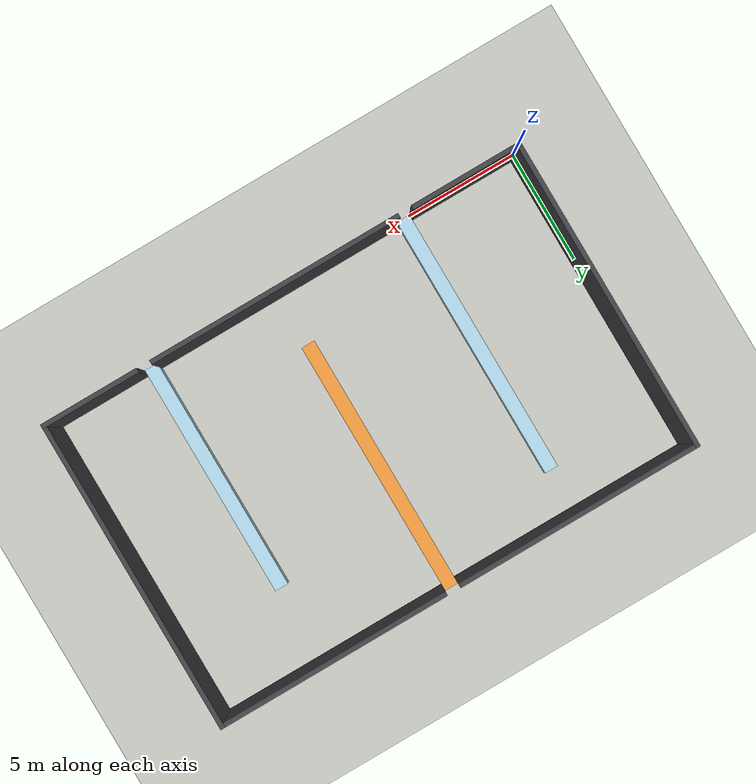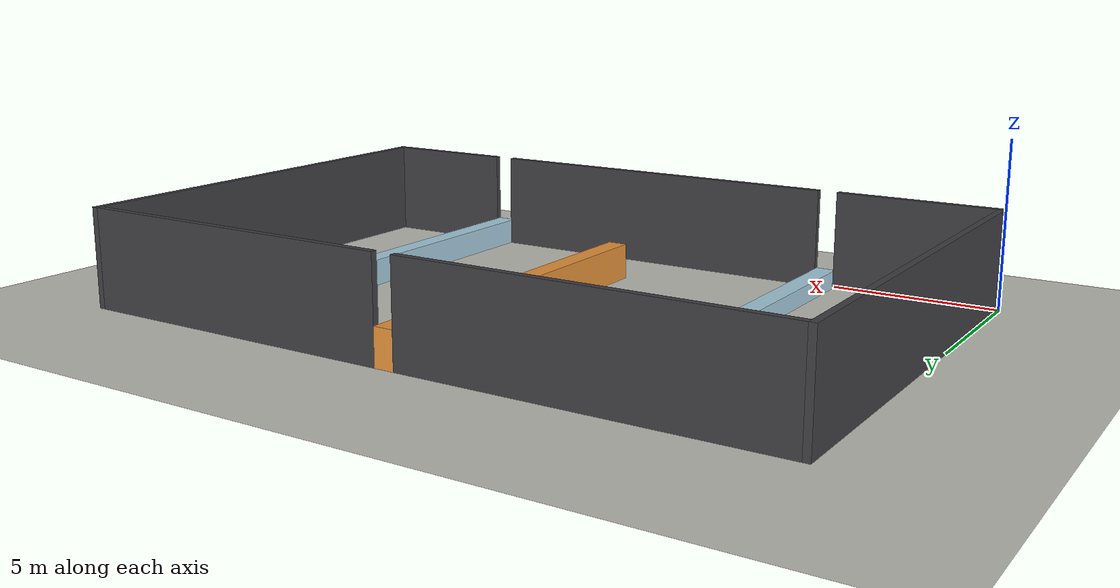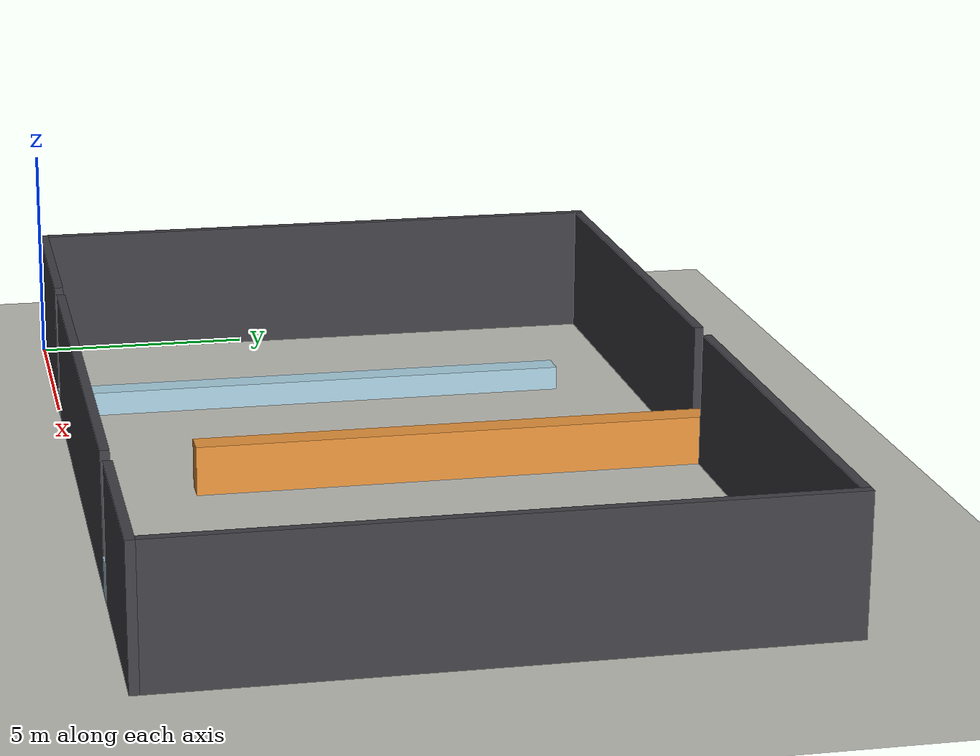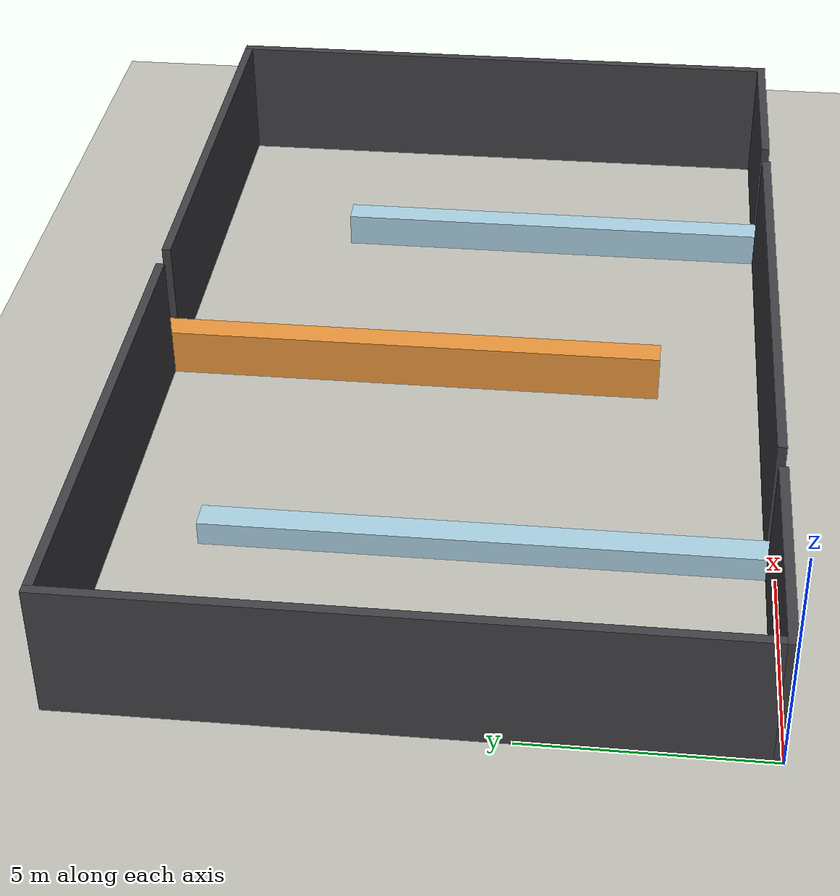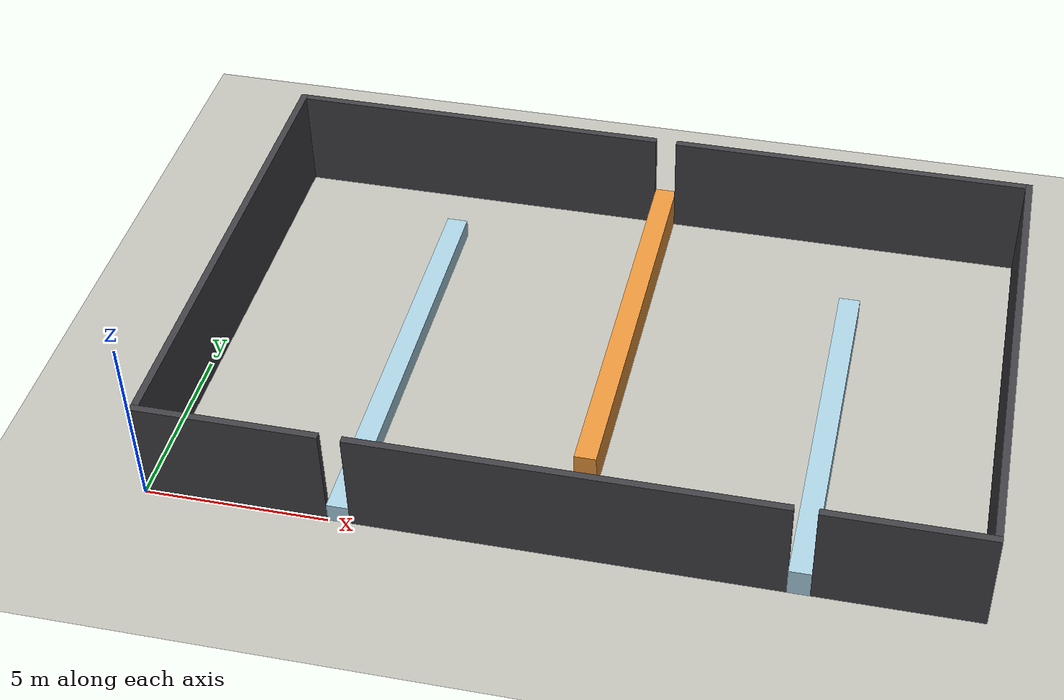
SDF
<?xml version="1.0" ?>
<!-- 자동 생성 파일 — 직접 수정하지 말 것.
     생성: python3 benchmark/export_sdf.py
     원본: benchmark/envs/heightmap.py 의 medium_open
     벽 3개(0.55/1.10/0.80), 1.10은 4D만 통과 가능 -->
<sdf version="1.9">
  <world name="medium_open">

    <physics name="1ms" type="ignored">
      <max_step_size>0.001</max_step_size>
      <real_time_factor>1.0</real_time_factor>
    </physics>

    <plugin filename="gz-sim-physics-system" name="gz::sim::systems::Physics">
    </plugin>
    <plugin filename="gz-sim-user-commands-system" name="gz::sim::systems::UserCommands">
    </plugin>
    <plugin filename="gz-sim-scene-broadcaster-system" name="gz::sim::systems::SceneBroadcaster">
    </plugin>
    <plugin filename="gz-sim-contact-system" name="gz::sim::systems::Contact">
    </plugin>
    <plugin filename="gz-sim-imu-system" name="gz::sim::systems::Imu">
    </plugin>
    <plugin filename="gz-sim-sensors-system" name="gz::sim::systems::Sensors">
      <render_engine>ogre</render_engine>
    </plugin>

    <light type="directional" name="sun">
      <cast_shadows>true</cast_shadows>
      <pose>0 0 10 0 0 0</pose>
      <diffuse>0.8 0.8 0.8 1</diffuse>
      <specular>0.2 0.2 0.2 1</specular>
      <direction>-0.5 0.1 -0.9</direction>
    </light>

    <model name="ground_plane">
      <static>true</static>
      <link name="link">
        <collision name="collision">
          <geometry><plane>
            <normal>0 0 1</normal>
            <size>32.0 24.0</size>
          </plane></geometry>
        </collision>
        <visual name="visual">
          <geometry><plane>
            <normal>0 0 1</normal>
            <size>32.0 24.0</size>
          </plane></geometry>
          <material>
            <ambient>0.75 0.75 0.72 1</ambient>
            <diffuse>0.75 0.75 0.72 1</diffuse>
          </material>
        </visual>
      </link>
    </model>

    <model name="obs_0001_h055">
      <static>true</static>
      <pose>5.300 6.000 0.275 0 0 0</pose>
      <link name="link">
        <collision name="collision">
          <geometry><box><size>0.600 12.000 0.550</size></box></geometry>
        </collision>
        <visual name="visual">
          <geometry><box><size>0.600 12.000 0.550</size></box></geometry>
          <material>
            <ambient>0.66 0.81 0.88 1</ambient>
            <diffuse>0.66 0.81 0.88 1</diffuse>
          </material>
        </visual>
      </link>
    </model>
    <model name="obs_0002_h080">
      <static>true</static>
      <pose>17.300 5.250 0.400 0 0 0</pose>
      <link name="link">
        <collision name="collision">
          <geometry><box><size>0.600 10.500 0.800</size></box></geometry>
        </collision>
        <visual name="visual">
          <geometry><box><size>0.600 10.500 0.800</size></box></geometry>
          <material>
            <ambient>0.66 0.81 0.88 1</ambient>
            <diffuse>0.66 0.81 0.88 1</diffuse>
          </material>
        </visual>
      </link>
    </model>
    <model name="obs_0003_h110">
      <static>true</static>
      <pose>11.300 8.250 0.550 0 0 0</pose>
      <link name="link">
        <collision name="collision">
          <geometry><box><size>0.600 11.500 1.100</size></box></geometry>
        </collision>
        <visual name="visual">
          <geometry><box><size>0.600 11.500 1.100</size></box></geometry>
          <material>
            <ambient>0.91 0.58 0.23 1</ambient>
            <diffuse>0.91 0.58 0.23 1</diffuse>
          </material>
        </visual>
      </link>
    </model>
    <model name="obs_0004_h300">
      <static>true</static>
      <pose>2.500 0.100 1.500 0 0 0</pose>
      <link name="link">
        <collision name="collision">
          <geometry><box><size>5.000 0.200 3.000</size></box></geometry>
        </collision>
        <visual name="visual">
          <geometry><box><size>5.000 0.200 3.000</size></box></geometry>
          <material>
            <ambient>0.25 0.25 0.27 1</ambient>
            <diffuse>0.25 0.25 0.27 1</diffuse>
          </material>
        </visual>
      </link>
    </model>
    <model name="obs_0005_h300">
      <static>true</static>
      <pose>11.300 0.100 1.500 0 0 0</pose>
      <link name="link">
        <collision name="collision">
          <geometry><box><size>11.400 0.200 3.000</size></box></geometry>
        </collision>
        <visual name="visual">
          <geometry><box><size>11.400 0.200 3.000</size></box></geometry>
          <material>
            <ambient>0.25 0.25 0.27 1</ambient>
            <diffuse>0.25 0.25 0.27 1</diffuse>
          </material>
        </visual>
      </link>
    </model>
    <model name="obs_0006_h300">
      <static>true</static>
      <pose>19.800 0.100 1.500 0 0 0</pose>
      <link name="link">
        <collision name="collision">
          <geometry><box><size>4.400 0.200 3.000</size></box></geometry>
        </collision>
        <visual name="visual">
          <geometry><box><size>4.400 0.200 3.000</size></box></geometry>
          <material>
            <ambient>0.25 0.25 0.27 1</ambient>
            <diffuse>0.25 0.25 0.27 1</diffuse>
          </material>
        </visual>
      </link>
    </model>
    <model name="obs_0007_h300">
      <static>true</static>
      <pose>0.100 7.100 1.500 0 0 0</pose>
      <link name="link">
        <collision name="collision">
          <geometry><box><size>0.200 13.800 3.000</size></box></geometry>
        </collision>
        <visual name="visual">
          <geometry><box><size>0.200 13.800 3.000</size></box></geometry>
          <material>
            <ambient>0.25 0.25 0.27 1</ambient>
            <diffuse>0.25 0.25 0.27 1</diffuse>
          </material>
        </visual>
      </link>
    </model>
    <model name="obs_0008_h300">
      <static>true</static>
      <pose>21.900 7.100 1.500 0 0 0</pose>
      <link name="link">
        <collision name="collision">
          <geometry><box><size>0.200 13.800 3.000</size></box></geometry>
        </collision>
        <visual name="visual">
          <geometry><box><size>0.200 13.800 3.000</size></box></geometry>
          <material>
            <ambient>0.25 0.25 0.27 1</ambient>
            <diffuse>0.25 0.25 0.27 1</diffuse>
          </material>
        </visual>
      </link>
    </model>
    <model name="obs_0009_h300">
      <static>true</static>
      <pose>5.600 13.900 1.500 0 0 0</pose>
      <link name="link">
        <collision name="collision">
          <geometry><box><size>10.800 0.200 3.000</size></box></geometry>
        </collision>
        <visual name="visual">
          <geometry><box><size>10.800 0.200 3.000</size></box></geometry>
          <material>
            <ambient>0.25 0.25 0.27 1</ambient>
            <diffuse>0.25 0.25 0.27 1</diffuse>
          </material>
        </visual>
      </link>
    </model>
    <model name="obs_0010_h300">
      <static>true</static>
      <pose>16.700 13.900 1.500 0 0 0</pose>
      <link name="link">
        <collision name="collision">
          <geometry><box><size>10.200 0.200 3.000</size></box></geometry>
        </collision>
        <visual name="visual">
          <geometry><box><size>10.200 0.200 3.000</size></box></geometry>
          <material>
            <ambient>0.25 0.25 0.27 1</ambient>
            <diffuse>0.25 0.25 0.27 1</diffuse>
          </material>
        </visual>
      </link>
    </model>

  </world>
</sdf>
